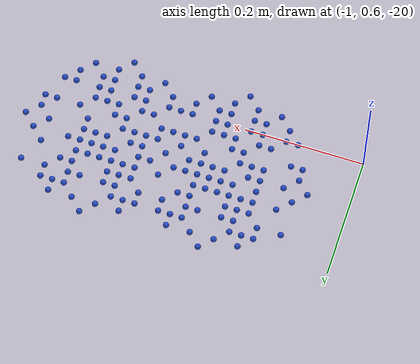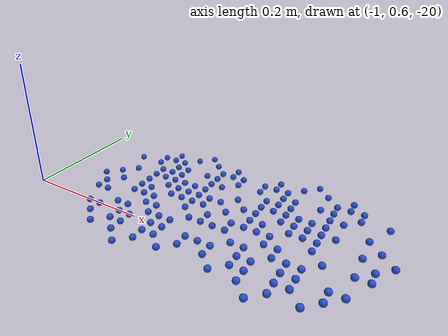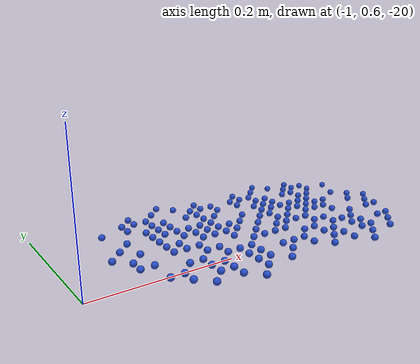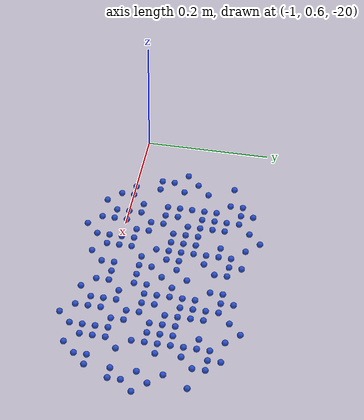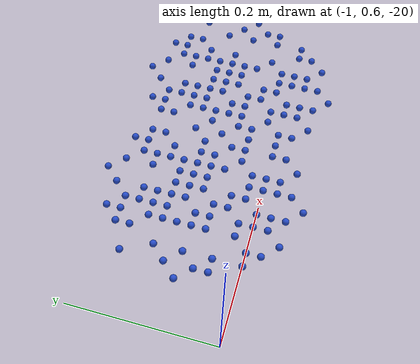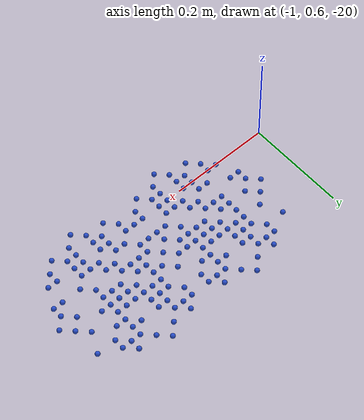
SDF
<sdf version="1.7">
 <model name="Washbasin_Water">
  <static>true</static>
  <link name="washbasin_water_tr1">
   <pose>-0.59 0.68 -20 0 0 0</pose>
   <visual name="green_mark_centre1_visual">
    <geometry><sphere><radius>0.005</radius></sphere></geometry>
    <material><script><name>Gazebo/BlueGlow</name></script></material>
   </visual>
   <visual name="green_mark_centre2_visual">
    <pose>0.02 0 0 0 0 0</pose>
    <geometry><sphere><radius>0.005</radius></sphere></geometry>
    <material><script><name>Gazebo/BlueGlow</name></script></material>
   </visual>
   <visual name="green_mark_centre4_visual">
    <pose>0.04 0 0 0 0 0</pose>
    <geometry><sphere><radius>0.005</radius></sphere></geometry>
    <material><script><name>Gazebo/BlueGlow</name></script></material>
   </visual>
   <visual name="green_mark_centre5_visual">
    <pose>-0.04 0 0 0 0 0</pose>
    <geometry><sphere><radius>0.005</radius></sphere></geometry>
    <material><script><name>Gazebo/BlueGlow</name></script></material>
   </visual>
   <visual name="green_mark_centre7_visual">
    <pose>-0.06 0 0 0 0 0</pose>
    <geometry><sphere><radius>0.005</radius></sphere></geometry>
    <material><script><name>Gazebo/BlueGlow</name></script></material>
   </visual>
   <visual name="green_mark_centre8_visual">
    <pose>0 0.02 0 0 0 0</pose>
    <geometry><sphere><radius>0.005</radius></sphere></geometry>
    <material><script><name>Gazebo/BlueGlow</name></script></material>
   </visual>
   <visual name="green_mark_centre10_visual">
    <pose>0 0.04 0 0 0 0</pose>
    <geometry><sphere><radius>0.005</radius></sphere></geometry>
    <material><script><name>Gazebo/BlueGlow</name></script></material>
   </visual>
   <visual name="green_mark_centre11_visual">
    <pose>0 -0.04 0 0 0 0</pose>
    <geometry><sphere><radius>0.005</radius></sphere></geometry>
    <material><script><name>Gazebo/BlueGlow</name></script></material>
   </visual>
   <visual name="green_mark_centre13_visual">
    <pose>0 -0.06 0 0 0 0</pose>
    <geometry><sphere><radius>0.005</radius></sphere></geometry>
    <material><script><name>Gazebo/BlueGlow</name></script></material>
   </visual>
   <visual name="green_mark_centre14_visual">
    <pose>0.02 0.02 0 0 0 0</pose>
    <geometry><sphere><radius>0.005</radius></sphere></geometry>
    <material><script><name>Gazebo/BlueGlow</name></script></material>
   </visual>
   <visual name="green_mark_centre16_visual">
    <pose>-0.02 -0.02 0 0 0 0</pose>
    <geometry><sphere><radius>0.005</radius></sphere></geometry>
    <material><script><name>Gazebo/BlueGlow</name></script></material>
   </visual>
   <visual name="green_mark_centre17_visual">
    <pose>-0.02 0.02 0 0 0 0</pose>
    <geometry><sphere><radius>0.005</radius></sphere></geometry>
    <material><script><name>Gazebo/BlueGlow</name></script></material>
   </visual>
   <visual name="green_mark_centre19_visual">
    <pose>0.04 0.04 0 0 0 0</pose>
    <geometry><sphere><radius>0.005</radius></sphere></geometry>
    <material><script><name>Gazebo/BlueGlow</name></script></material>
   </visual>
   <visual name="green_mark_centre20_visual">
    <pose>-0.04 0.04 0 0 0 0</pose>
    <geometry><sphere><radius>0.005</radius></sphere></geometry>
    <material><script><name>Gazebo/BlueGlow</name></script></material>
   </visual>
   <visual name="green_mark_centre22_visual">
    <pose>0.04 0.06 0 0 0 0</pose>
    <geometry><sphere><radius>0.005</radius></sphere></geometry>
    <material><script><name>Gazebo/BlueGlow</name></script></material>
   </visual>
   <visual name="green_mark_centre23_visual">
    <pose>0.04 -0.06 0 0 0 0</pose>
    <geometry><sphere><radius>0.005</radius></sphere></geometry>
    <material><script><name>Gazebo/BlueGlow</name></script></material>
   </visual>
   <visual name="green_mark_centre25_visual">
    <pose>-0.04 0.06 0 0 0 0</pose>
    <geometry><sphere><radius>0.005</radius></sphere></geometry>
    <material><script><name>Gazebo/BlueGlow</name></script></material>
   </visual>
   <visual name="green_mark_centre26_visual">
    <pose>-0.04 -0.06 0 0 0 0</pose>
    <geometry><sphere><radius>0.005</radius></sphere></geometry>
    <material><script><name>Gazebo/BlueGlow</name></script></material>
   </visual>
   <visual name="green_mark_centre28_visual">
    <pose>0.06 0.06 0 0 0 0</pose>
    <geometry><sphere><radius>0.005</radius></sphere></geometry>
    <material><script><name>Gazebo/BlueGlow</name></script></material>
   </visual>
   <visual name="green_mark_centre29_visual">
    <pose>-0.06 0.06 0 0 0 0</pose>
    <geometry><sphere><radius>0.005</radius></sphere></geometry>
    <material><script><name>Gazebo/BlueGlow</name></script></material>
   </visual>
   <visual name="green_mark_centre31_visual">
    <pose>-0.06 -0.06 0 0 0 0</pose>
    <geometry><sphere><radius>0.005</radius></sphere></geometry>
    <material><script><name>Gazebo/BlueGlow</name></script></material>
   </visual>
   <visual name="green_mark_centre32_visual">
    <pose>0.02 0.04 0 0 0 0</pose>
    <geometry><sphere><radius>0.005</radius></sphere></geometry>
    <material><script><name>Gazebo/BlueGlow</name></script></material>
   </visual>
   <visual name="green_mark_centre34_visual">
    <pose>-0.02 0.04 0 0 0 0</pose>
    <geometry><sphere><radius>0.005</radius></sphere></geometry>
    <material><script><name>Gazebo/BlueGlow</name></script></material>
   </visual>
   <visual name="green_mark_centre35_visual">
    <pose>-0.02 -0.04 0 0 0 0</pose>
    <geometry><sphere><radius>0.005</radius></sphere></geometry>
    <material><script><name>Gazebo/BlueGlow</name></script></material>
   </visual>
   <visual name="green_mark_centre37_visual">
    <pose>0.02 -0.06 0 0 0 0</pose>
    <geometry><sphere><radius>0.005</radius></sphere></geometry>
    <material><script><name>Gazebo/BlueGlow</name></script></material>
   </visual>
   <visual name="green_mark_centre38_visual">
    <pose>-0.02 0.06 0 0 0 0</pose>
    <geometry><sphere><radius>0.005</radius></sphere></geometry>
    <material><script><name>Gazebo/BlueGlow</name></script></material>
   </visual>
   <visual name="green_mark_centre40_visual">
    <pose>0.04 0.02 0 0 0 0</pose>
    <geometry><sphere><radius>0.005</radius></sphere></geometry>
    <material><script><name>Gazebo/BlueGlow</name></script></material>
   </visual>
   <visual name="green_mark_centre41_visual">
    <pose>0.04 -0.02 0 0 0 0</pose>
    <geometry><sphere><radius>0.005</radius></sphere></geometry>
    <material><script><name>Gazebo/BlueGlow</name></script></material>
   </visual>
   <visual name="green_mark_centre43_visual">
    <pose>-0.04 -0.02 0 0 0 0</pose>
    <geometry><sphere><radius>0.005</radius></sphere></geometry>
    <material><script><name>Gazebo/BlueGlow</name></script></material>
   </visual>
   <visual name="green_mark_centre44_visual">
    <pose>0.06 0.02 0 0 0 0</pose>
    <geometry><sphere><radius>0.005</radius></sphere></geometry>
    <material><script><name>Gazebo/BlueGlow</name></script></material>
   </visual>
   <visual name="green_mark_centre46_visual">
    <pose>-0.06 0.02 0 0 0 0</pose>
    <geometry><sphere><radius>0.005</radius></sphere></geometry>
    <material><script><name>Gazebo/BlueGlow</name></script></material>
   </visual>
   <visual name="green_mark_centre47_visual">
    <pose>-0.06 -0.02 0 0 0 0</pose>
    <geometry><sphere><radius>0.005</radius></sphere></geometry>
    <material><script><name>Gazebo/BlueGlow</name></script></material>
   </visual>
   <visual name="green_mark_centre49_visual">
    <pose>0.06 -0.04 0 0 0 0</pose>
    <geometry><sphere><radius>0.005</radius></sphere></geometry>
    <material><script><name>Gazebo/BlueGlow</name></script></material>
   </visual>
   <visual name="green_mark_centre50_visual">
    <pose>-0.06 0.04 0 0 0 0</pose>
    <geometry><sphere><radius>0.005</radius></sphere></geometry>
    <material><script><name>Gazebo/BlueGlow</name></script></material>
   </visual>
   <visual name="green_mark_top1_visual">
    <pose>-0.06 0.12 0 0 0 0</pose>
    <geometry><sphere><radius>0.005</radius></sphere></geometry>
    <material><script><name>Gazebo/BlueGlow</name></script></material>
   </visual>
   <visual name="green_mark_top2_visual">
    <pose>-0.06 0.10 0 0 0 0</pose>
    <geometry><sphere><radius>0.005</radius></sphere></geometry>
    <material><script><name>Gazebo/BlueGlow</name></script></material>
   </visual>
   <visual name="green_mark_top4_visual">
    <pose>-0.04 0.10 0 0 0 0</pose>
    <geometry><sphere><radius>0.005</radius></sphere></geometry>
    <material><script><name>Gazebo/BlueGlow</name></script></material>
   </visual>
   <visual name="green_mark_top7_visual">
    <pose>-0.04 0.08 0 0 0 0</pose>
    <geometry><sphere><radius>0.005</radius></sphere></geometry>
    <material><script><name>Gazebo/BlueGlow</name></script></material>
   </visual>
   <visual name="green_mark_top8_visual">
    <pose>-0.02 0.12 0 0 0 0</pose>
    <geometry><sphere><radius>0.005</radius></sphere></geometry>
    <material><script><name>Gazebo/BlueGlow</name></script></material>
   </visual>
   <visual name="green_mark_top10_visual">
    <pose>-0.02 0.12 0 0 0 0</pose>
    <geometry><sphere><radius>0.005</radius></sphere></geometry>
    <material><script><name>Gazebo/BlueGlow</name></script></material>
   </visual>
   <visual name="green_mark_top12_visual">
    <pose>-0.02 0.08 0 0 0 0</pose>
    <geometry><sphere><radius>0.005</radius></sphere></geometry>
    <material><script><name>Gazebo/BlueGlow</name></script></material>
   </visual>
   <visual name="green_mark_top14_visual">
    <pose>0.06 0.12 0 0 0 0</pose>
    <geometry><sphere><radius>0.005</radius></sphere></geometry>
    <material><script><name>Gazebo/BlueGlow</name></script></material>
   </visual>
   <visual name="green_mark_top15_visual">
    <pose>0.06 0.10 0 0 0 0</pose>
    <geometry><sphere><radius>0.005</radius></sphere></geometry>
    <material><script><name>Gazebo/BlueGlow</name></script></material>
   </visual>
   <visual name="green_mark_top17_visual">
    <pose>0.04 0.10 0 0 0 0</pose>
    <geometry><sphere><radius>0.005</radius></sphere></geometry>
    <material><script><name>Gazebo/BlueGlow</name></script></material>
   </visual>
   <visual name="green_mark_top20_visual">
    <pose>0.04 0.08 0 0 0 0</pose>
    <geometry><sphere><radius>0.005</radius></sphere></geometry>
    <material><script><name>Gazebo/BlueGlow</name></script></material>
   </visual>
   <visual name="green_mark_top21_visual">
    <pose>0.02 0.12 0 0 0 0</pose>
    <geometry><sphere><radius>0.005</radius></sphere></geometry>
    <material><script><name>Gazebo/BlueGlow</name></script></material>
   </visual>
   <visual name="green_mark_top23_visual">
    <pose>0.02 0.12 0 0 0 0</pose>
    <geometry><sphere><radius>0.005</radius></sphere></geometry>
    <material><script><name>Gazebo/BlueGlow</name></script></material>
   </visual>
   <visual name="green_mark_top25_visual">
    <pose>0.02 0.08 0 0 0 0</pose>
    <geometry><sphere><radius>0.005</radius></sphere></geometry>
    <material><script><name>Gazebo/BlueGlow</name></script></material>
   </visual>
   <visual name="green_mark_top88_visual">
    <pose>0.0 0.14 0 0 0 0</pose>
    <geometry><sphere><radius>0.005</radius></sphere></geometry>
    <material><script><name>Gazebo/BlueGlow</name></script></material>
   </visual>
   <visual name="green_mark_top89_visual">
    <pose>0.0 -0.14 0 0 0 0</pose>
    <geometry><sphere><radius>0.005</radius></sphere></geometry>
    <material><script><name>Gazebo/BlueGlow</name></script></material>
   </visual>
   <visual name="green_mark_top3_visual">
    <pose>-0.06 -0.12 0 0 0 0</pose>
    <geometry><sphere><radius>0.005</radius></sphere></geometry>
    <material><script><name>Gazebo/BlueGlow</name></script></material>
   </visual>
   <visual name="green_mark_top5_visual">
    <pose>-0.04 -0.10 0 0 0 0</pose>
    <geometry><sphere><radius>0.005</radius></sphere></geometry>
    <material><script><name>Gazebo/BlueGlow</name></script></material>
   </visual>
   <visual name="green_mark_top6_visual">
    <pose>-0.04 -0.08 0 0 0 0</pose>
    <geometry><sphere><radius>0.005</radius></sphere></geometry>
    <material><script><name>Gazebo/BlueGlow</name></script></material>
   </visual>
   <visual name="green_mark_top9_visual">
    <pose>-0.02 -0.12 0 0 0 0</pose>
    <geometry><sphere><radius>0.005</radius></sphere></geometry>
    <material><script><name>Gazebo/BlueGlow</name></script></material>
   </visual>
   <visual name="green_mark_top11_visual">
    <pose>-0.02 -0.10 0 0 0 0</pose>
    <geometry><sphere><radius>0.005</radius></sphere></geometry>
    <material><script><name>Gazebo/BlueGlow</name></script></material>
   </visual>
   <visual name="green_mark_top13_visual">
    <pose>-0.02 -0.08 0 0 0 0</pose>
    <geometry><sphere><radius>0.005</radius></sphere></geometry>
    <material><script><name>Gazebo/BlueGlow</name></script></material>
   </visual>
   <visual name="green_mark_top6_visual">
    <pose>-0.04 -0.08 0 0 0 0</pose>
    <geometry><sphere><radius>0.005</radius></sphere></geometry>
    <material><script><name>Gazebo/BlueGlow</name></script></material>
   </visual>
   <visual name="green_mark_top16_visual">
    <pose>0.06 -0.12 0 0 0 0</pose>
    <geometry><sphere><radius>0.005</radius></sphere></geometry>
    <material><script><name>Gazebo/BlueGlow</name></script></material>
   </visual>
   <visual name="green_mark_top18_visual">
    <pose>0.04 -0.10 0 0 0 0</pose>
    <geometry><sphere><radius>0.005</radius></sphere></geometry>
    <material><script><name>Gazebo/BlueGlow</name></script></material>
   </visual>
   <visual name="green_mark_top19_visual">
    <pose>0.04 -0.08 0 0 0 0</pose>
    <geometry><sphere><radius>0.005</radius></sphere></geometry>
    <material><script><name>Gazebo/BlueGlow</name></script></material>
   </visual>
   <visual name="green_mark_top22_visual">
    <pose>0.02 -0.12 0 0 0 0</pose>
    <geometry><sphere><radius>0.005</radius></sphere></geometry>
    <material><script><name>Gazebo/BlueGlow</name></script></material>
   </visual>
   <visual name="green_mark_top24_visual">
    <pose>0.02 -0.10 0 0 0 0</pose>
    <geometry><sphere><radius>0.005</radius></sphere></geometry>
    <material><script><name>Gazebo/BlueGlow</name></script></material>
   </visual>
   <visual name="green_mark_top26_visual">
    <pose>0.02 -0.08 0 0 0 0</pose>
    <geometry><sphere><radius>0.005</radius></sphere></geometry>
    <material><script><name>Gazebo/BlueGlow</name></script></material>
   </visual>
   <visual name="green_mark_top3_visual">
    <pose>-0.14 0 0 0 0 0</pose>
    <geometry><sphere><radius>0.005</radius></sphere></geometry>
    <material><script><name>Gazebo/BlueGlow</name></script></material>
   </visual>
   <visual name="green_mark_top365_visual">
    <pose>-0.12 0.08 0 0 0 0</pose>
    <geometry><sphere><radius>0.005</radius></sphere></geometry>
    <material><script><name>Gazebo/BlueGlow</name></script></material>
   </visual>
   <visual name="green_mark_top93_visual">
    <pose>-0.10 0 0 0 0 0</pose>
    <geometry><sphere><radius>0.005</radius></sphere></geometry>
    <material><script><name>Gazebo/BlueGlow</name></script></material>
   </visual>
   <visual name="green_mark_top5_visual">
    <pose>-0.12 0.02 0 0 0 0</pose>
    <geometry><sphere><radius>0.005</radius></sphere></geometry>
    <material><script><name>Gazebo/BlueGlow</name></script></material>
   </visual>
   <visual name="green_mark_top6_visual">
    <pose>-0.10 0.04 0 0 0 0</pose>
    <geometry><sphere><radius>0.005</radius></sphere></geometry>
    <material><script><name>Gazebo/BlueGlow</name></script></material>
   </visual>
   <visual name="green_mark_top20_visual">
    <pose>-0.08 0.10 0 0 0 0</pose>
    <geometry><sphere><radius>0.005</radius></sphere></geometry>
    <material><script><name>Gazebo/BlueGlow</name></script></material>
   </visual>
   <visual name="green_mark_top50_visual">
    <pose>-0.08 0.08 0 0 0 0</pose>
    <geometry><sphere><radius>0.005</radius></sphere></geometry>
    <material><script><name>Gazebo/BlueGlow</name></script></material>
   </visual>
   <visual name="green_mark_top3_visual">
    <pose>-0.12 -0.04 0 0 0 0</pose>
    <geometry><sphere><radius>0.005</radius></sphere></geometry>
    <material><script><name>Gazebo/BlueGlow</name></script></material>
   </visual>
   <visual name="green_mark_top5_visual">
    <pose>-0.12 -0.02 0 0 0 0</pose>
    <geometry><sphere><radius>0.005</radius></sphere></geometry>
    <material><script><name>Gazebo/BlueGlow</name></script></material>
   </visual>
   <visual name="green_mark_top6_visual">
    <pose>-0.10 -0.04 0 0 0 0</pose>
    <geometry><sphere><radius>0.005</radius></sphere></geometry>
    <material><script><name>Gazebo/BlueGlow</name></script></material>
   </visual>
   <visual name="green_mark_top6_visual">
    <pose>-0.10 -0.08 0 0 0 0</pose>
    <geometry><sphere><radius>0.005</radius></sphere></geometry>
    <material><script><name>Gazebo/BlueGlow</name></script></material>
   </visual>
   <visual name="green_mark_top20_visual">
    <pose>-0.08 -0.10 0 0 0 0</pose>
    <geometry><sphere><radius>0.005</radius></sphere></geometry>
    <material><script><name>Gazebo/BlueGlow</name></script></material>
   </visual>
   <visual name="green_mark_top50_visual">
    <pose>-0.08 -0.08 0 0 0 0</pose>
    <geometry><sphere><radius>0.005</radius></sphere></geometry>
    <material><script><name>Gazebo/BlueGlow</name></script></material>
   </visual>
   <visual name="green_mark_top3_visual">
    <pose>0.14 0 0 0 0 0</pose>
    <geometry><sphere><radius>0.005</radius></sphere></geometry>
    <material><script><name>Gazebo/BlueGlow</name></script></material>
   </visual>
   <visual name="green_mark_top365_visual">
    <pose>0.12 0.08 0 0 0 0</pose>
    <geometry><sphere><radius>0.005</radius></sphere></geometry>
    <material><script><name>Gazebo/BlueGlow</name></script></material>
   </visual>
   <visual name="green_mark_top93_visual">
    <pose>0.10 0 0 0 0 0</pose>
    <geometry><sphere><radius>0.005</radius></sphere></geometry>
    <material><script><name>Gazebo/BlueGlow</name></script></material>
   </visual>
   <visual name="green_mark_top5_visual">
    <pose>0.12 0.02 0 0 0 0</pose>
    <geometry><sphere><radius>0.005</radius></sphere></geometry>
    <material><script><name>Gazebo/BlueGlow</name></script></material>
   </visual>
   <visual name="green_mark_top6_visual">
    <pose>0.10 0.04 0 0 0 0</pose>
    <geometry><sphere><radius>0.005</radius></sphere></geometry>
    <material><script><name>Gazebo/BlueGlow</name></script></material>
   </visual>
   <visual name="green_mark_top20_visual">
    <pose>0.08 0.10 0 0 0 0</pose>
    <geometry><sphere><radius>0.005</radius></sphere></geometry>
    <material><script><name>Gazebo/BlueGlow</name></script></material>
   </visual>
   <visual name="green_mark_top50_visual">
    <pose>0.08 0.08 0 0 0 0</pose>
    <geometry><sphere><radius>0.005</radius></sphere></geometry>
    <material><script><name>Gazebo/BlueGlow</name></script></material>
   </visual>
   <visual name="green_mark_top3_visual">
    <pose>0.12 -0.04 0 0 0 0</pose>
    <geometry><sphere><radius>0.005</radius></sphere></geometry>
    <material><script><name>Gazebo/BlueGlow</name></script></material>
   </visual>
   <visual name="green_mark_top5_visual">
    <pose>0.12 -0.02 0 0 0 0</pose>
    <geometry><sphere><radius>0.005</radius></sphere></geometry>
    <material><script><name>Gazebo/BlueGlow</name></script></material>
   </visual>
   <visual name="green_mark_top6_visual">
    <pose>0.10 -0.04 0 0 0 0</pose>
    <geometry><sphere><radius>0.005</radius></sphere></geometry>
    <material><script><name>Gazebo/BlueGlow</name></script></material>
   </visual>
   <visual name="green_mark_top6_visual">
    <pose>0.10 -0.08 0 0 0 0</pose>
    <geometry><sphere><radius>0.005</radius></sphere></geometry>
    <material><script><name>Gazebo/BlueGlow</name></script></material>
   </visual>
   <visual name="green_mark_top20_visual">
    <pose>0.08 -0.10 0 0 0 0</pose>
    <geometry><sphere><radius>0.005</radius></sphere></geometry>
    <material><script><name>Gazebo/BlueGlow</name></script></material>
   </visual>
   <visual name="green_mark_top50_visual">
    <pose>0.08 -0.08 0 0 0 0</pose>
    <geometry><sphere><radius>0.005</radius></sphere></geometry>
    <material><script><name>Gazebo/BlueGlow</name></script></material>
   </visual>
  </link>
  <link name="washbasin_water_tr2">
   <pose>-0.79 0.68 -20 0 0 0</pose>
   <visual name="green_mark_centre1_visual">
    <geometry><sphere><radius>0.005</radius></sphere></geometry>
    <material><script><name>Gazebo/BlueGlow</name></script></material>
   </visual>
   <visual name="green_mark_centre2_visual">
    <pose>0.02 0 0 0 0 0</pose>
    <geometry><sphere><radius>0.005</radius></sphere></geometry>
    <material><script><name>Gazebo/BlueGlow</name></script></material>
   </visual>
   <visual name="green_mark_centre4_visual">
    <pose>0.04 0 0 0 0 0</pose>
    <geometry><sphere><radius>0.005</radius></sphere></geometry>
    <material><script><name>Gazebo/BlueGlow</name></script></material>
   </visual>
   <visual name="green_mark_centre5_visual">
    <pose>-0.04 0 0 0 0 0</pose>
    <geometry><sphere><radius>0.005</radius></sphere></geometry>
    <material><script><name>Gazebo/BlueGlow</name></script></material>
   </visual>
   <visual name="green_mark_centre7_visual">
    <pose>-0.06 0 0 0 0 0</pose>
    <geometry><sphere><radius>0.005</radius></sphere></geometry>
    <material><script><name>Gazebo/BlueGlow</name></script></material>
   </visual>
   <visual name="green_mark_centre8_visual">
    <pose>0 0.02 0 0 0 0</pose>
    <geometry><sphere><radius>0.005</radius></sphere></geometry>
    <material><script><name>Gazebo/BlueGlow</name></script></material>
   </visual>
   <visual name="green_mark_centre10_visual">
    <pose>0 0.04 0 0 0 0</pose>
    <geometry><sphere><radius>0.005</radius></sphere></geometry>
    <material><script><name>Gazebo/BlueGlow</name></script></material>
   </visual>
   <visual name="green_mark_centre11_visual">
    <pose>0 -0.04 0 0 0 0</pose>
    <geometry><sphere><radius>0.005</radius></sphere></geometry>
    <material><script><name>Gazebo/BlueGlow</name></script></material>
   </visual>
   <visual name="green_mark_centre13_visual">
    <pose>0 -0.06 0 0 0 0</pose>
    <geometry><sphere><radius>0.005</radius></sphere></geometry>
    <material><script><name>Gazebo/BlueGlow</name></script></material>
   </visual>
   <visual name="green_mark_centre14_visual">
    <pose>0.02 0.02 0 0 0 0</pose>
    <geometry><sphere><radius>0.005</radius></sphere></geometry>
    <material><script><name>Gazebo/BlueGlow</name></script></material>
   </visual>
   <visual name="green_mark_centre16_visual">
    <pose>-0.02 -0.02 0 0 0 0</pose>
    <geometry><sphere><radius>0.005</radius></sphere></geometry>
    <material><script><name>Gazebo/BlueGlow</name></script></material>
   </visual>
   <visual name="green_mark_centre17_visual">
    <pose>-0.02 0.02 0 0 0 0</pose>
    <geometry><sphere><radius>0.005</radius></sphere></geometry>
    <material><script><name>Gazebo/BlueGlow</name></script></material>
   </visual>
   <visual name="green_mark_centre19_visual">
    <pose>0.04 0.04 0 0 0 0</pose>
    <geometry><sphere><radius>0.005</radius></sphere></geometry>
    <material><script><name>Gazebo/BlueGlow</name></script></material>
   </visual>
   <visual name="green_mark_centre20_visual">
    <pose>-0.04 0.04 0 0 0 0</pose>
    <geometry><sphere><radius>0.005</radius></sphere></geometry>
    <material><script><name>Gazebo/BlueGlow</name></script></material>
   </visual>
   <visual name="green_mark_centre22_visual">
    <pose>0.04 0.06 0 0 0 0</pose>
    <geometry><sphere><radius>0.005</radius></sphere></geometry>
    <material><script><name>Gazebo/BlueGlow</name></script></material>
   </visual>
   <visual name="green_mark_centre23_visual">
    <pose>0.04 -0.06 0 0 0 0</pose>
    <geometry><sphere><radius>0.005</radius></sphere></geometry>
    <material><script><name>Gazebo/BlueGlow</name></script></material>
   </visual>
   <visual name="green_mark_centre25_visual">
    <pose>-0.04 0.06 0 0 0 0</pose>
    <geometry><sphere><radius>0.005</radius></sphere></geometry>
    <material><script><name>Gazebo/BlueGlow</name></script></material>
   </visual>
   <visual name="green_mark_centre26_visual">
    <pose>-0.04 -0.06 0 0 0 0</pose>
    <geometry><sphere><radius>0.005</radius></sphere></geometry>
    <material><script><name>Gazebo/BlueGlow</name></script></material>
   </visual>
   <visual name="green_mark_centre28_visual">
    <pose>0.06 0.06 0 0 0 0</pose>
    <geometry><sphere><radius>0.005</radius></sphere></geometry>
    <material><script><name>Gazebo/BlueGlow</name></script></material>
   </visual>
   <visual name="green_mark_centre29_visual">
    <pose>-0.06 0.06 0 0 0 0</pose>
    <geometry><sphere><radius>0.005</radius></sphere></geometry>
    <material><script><name>Gazebo/BlueGlow</name></script></material>
   </visual>
   <visual name="green_mark_centre31_visual">
    <pose>-0.06 -0.06 0 0 0 0</pose>
    <geometry><sphere><radius>0.005</radius></sphere></geometry>
    <material><script><name>Gazebo/BlueGlow</name></script></material>
   </visual>
   <visual name="green_mark_centre32_visual">
    <pose>0.02 0.04 0 0 0 0</pose>
    <geometry><sphere><radius>0.005</radius></sphere></geometry>
    <material><script><name>Gazebo/BlueGlow</name></script></material>
   </visual>
   <visual name="green_mark_centre34_visual">
    <pose>-0.02 0.04 0 0 0 0</pose>
    <geometry><sphere><radius>0.005</radius></sphere></geometry>
    <material><script><name>Gazebo/BlueGlow</name></script></material>
   </visual>
   <visual name="green_mark_centre35_visual">
    <pose>-0.02 -0.04 0 0 0 0</pose>
    <geometry><sphere><radius>0.005</radius></sphere></geometry>
    <material><script><name>Gazebo/BlueGlow</name></script></material>
   </visual>
   <visual name="green_mark_centre37_visual">
    <pose>0.02 -0.06 0 0 0 0</pose>
    <geometry><sphere><radius>0.005</radius></sphere></geometry>
    <material><script><name>Gazebo/BlueGlow</name></script></material>
   </visual>
   <visual name="green_mark_centre38_visual">
    <pose>-0.02 0.06 0 0 0 0</pose>
    <geometry><sphere><radius>0.005</radius></sphere></geometry>
    <material><script><name>Gazebo/BlueGlow</name></script></material>
   </visual>
   <visual name="green_mark_centre40_visual">
    <pose>0.04 0.02 0 0 0 0</pose>
    <geometry><sphere><radius>0.005</radius></sphere></geometry>
    <material><script><name>Gazebo/BlueGlow</name></script></material>
   </visual>
   <visual name="green_mark_centre41_visual">
    <pose>0.04 -0.02 0 0 0 0</pose>
    <geometry><sphere><radius>0.005</radius></sphere></geometry>
    <material><script><name>Gazebo/BlueGlow</name></script></material>
   </visual>
   <visual name="green_mark_centre43_visual">
    <pose>-0.04 -0.02 0 0 0 0</pose>
    <geometry><sphere><radius>0.005</radius></sphere></geometry>
    <material><script><name>Gazebo/BlueGlow</name></script></material>
   </visual>
   <visual name="green_mark_centre44_visual">
    <pose>0.06 0.02 0 0 0 0</pose>
    <geometry><sphere><radius>0.005</radius></sphere></geometry>
    <material><script><name>Gazebo/BlueGlow</name></script></material>
   </visual>
   <visual name="green_mark_centre46_visual">
    <pose>-0.06 0.02 0 0 0 0</pose>
    <geometry><sphere><radius>0.005</radius></sphere></geometry>
    <material><script><name>Gazebo/BlueGlow</name></script></material>
   </visual>
   <visual name="green_mark_centre47_visual">
    <pose>-0.06 -0.02 0 0 0 0</pose>
    <geometry><sphere><radius>0.005</radius></sphere></geometry>
    <material><script><name>Gazebo/BlueGlow</name></script></material>
   </visual>
   <visual name="green_mark_centre49_visual">
    <pose>0.06 -0.04 0 0 0 0</pose>
    <geometry><sphere><radius>0.005</radius></sphere></geometry>
    <material><script><name>Gazebo/BlueGlow</name></script></material>
   </visual>
   <visual name="green_mark_centre50_visual">
    <pose>-0.06 0.04 0 0 0 0</pose>
    <geometry><sphere><radius>0.005</radius></sphere></geometry>
    <material><script><name>Gazebo/BlueGlow</name></script></material>
   </visual>
   <visual name="green_mark_top1_visual">
    <pose>-0.06 0.12 0 0 0 0</pose>
    <geometry><sphere><radius>0.005</radius></sphere></geometry>
    <material><script><name>Gazebo/BlueGlow</name></script></material>
   </visual>
   <visual name="green_mark_top2_visual">
    <pose>-0.06 0.10 0 0 0 0</pose>
    <geometry><sphere><radius>0.005</radius></sphere></geometry>
    <material><script><name>Gazebo/BlueGlow</name></script></material>
   </visual>
   <visual name="green_mark_top4_visual">
    <pose>-0.04 0.10 0 0 0 0</pose>
    <geometry><sphere><radius>0.005</radius></sphere></geometry>
    <material><script><name>Gazebo/BlueGlow</name></script></material>
   </visual>
   <visual name="green_mark_top7_visual">
    <pose>-0.04 0.08 0 0 0 0</pose>
    <geometry><sphere><radius>0.005</radius></sphere></geometry>
    <material><script><name>Gazebo/BlueGlow</name></script></material>
   </visual>
   <visual name="green_mark_top8_visual">
    <pose>-0.02 0.12 0 0 0 0</pose>
    <geometry><sphere><radius>0.005</radius></sphere></geometry>
    <material><script><name>Gazebo/BlueGlow</name></script></material>
   </visual>
   <visual name="green_mark_top10_visual">
    <pose>-0.02 0.12 0 0 0 0</pose>
    <geometry><sphere><radius>0.005</radius></sphere></geometry>
    <material><script><name>Gazebo/BlueGlow</name></script></material>
   </visual>
   <visual name="green_mark_top12_visual">
    <pose>-0.02 0.08 0 0 0 0</pose>
    <geometry><sphere><radius>0.005</radius></sphere></geometry>
    <material><script><name>Gazebo/BlueGlow</name></script></material>
   </visual>
   <visual name="green_mark_top14_visual">
    <pose>0.06 0.12 0 0 0 0</pose>
    <geometry><sphere><radius>0.005</radius></sphere></geometry>
    <material><script><name>Gazebo/BlueGlow</name></script></material>
   </visual>
   <visual name="green_mark_top15_visual">
    <pose>0.06 0.10 0 0 0 0</pose>
    <geometry><sphere><radius>0.005</radius></sphere></geometry>
    <material><script><name>Gazebo/BlueGlow</name></script></material>
   </visual>
   <visual name="green_mark_top17_visual">
    <pose>0.04 0.10 0 0 0 0</pose>
    <geometry><sphere><radius>0.005</radius></sphere></geometry>
    <material><script><name>Gazebo/BlueGlow</name></script></material>
   </visual>
   <visual name="green_mark_top20_visual">
    <pose>0.04 0.08 0 0 0 0</pose>
    <geometry><sphere><radius>0.005</radius></sphere></geometry>
    <material><script><name>Gazebo/BlueGlow</name></script></material>
   </visual>
   <visual name="green_mark_top21_visual">
    <pose>0.02 0.12 0 0 0 0</pose>
    <geometry><sphere><radius>0.005</radius></sphere></geometry>
    <material><script><name>Gazebo/BlueGlow</name></script></material>
   </visual>
   <visual name="green_mark_top23_visual">
    <pose>0.02 0.12 0 0 0 0</pose>
    <geometry><sphere><radius>0.005</radius></sphere></geometry>
    <material><script><name>Gazebo/BlueGlow</name></script></material>
   </visual>
   <visual name="green_mark_top25_visual">
    <pose>0.02 0.08 0 0 0 0</pose>
    <geometry><sphere><radius>0.005</radius></sphere></geometry>
    <material><script><name>Gazebo/BlueGlow</name></script></material>
   </visual>
   <visual name="green_mark_top88_visual">
    <pose>0.0 0.14 0 0 0 0</pose>
    <geometry><sphere><radius>0.005</radius></sphere></geometry>
    <material><script><name>Gazebo/BlueGlow</name></script></material>
   </visual>
   <visual name="green_mark_top89_visual">
    <pose>0.0 -0.14 0 0 0 0</pose>
    <geometry><sphere><radius>0.005</radius></sphere></geometry>
    <material><script><name>Gazebo/BlueGlow</name></script></material>
   </visual>
   <visual name="green_mark_top3_visual">
    <pose>-0.06 -0.12 0 0 0 0</pose>
    <geometry><sphere><radius>0.005</radius></sphere></geometry>
    <material><script><name>Gazebo/BlueGlow</name></script></material>
   </visual>
   <visual name="green_mark_top5_visual">
    <pose>-0.04 -0.10 0 0 0 0</pose>
    <geometry><sphere><radius>0.005</radius></sphere></geometry>
    <material><script><name>Gazebo/BlueGlow</name></script></material>
   </visual>
   <visual name="green_mark_top6_visual">
    <pose>-0.04 -0.08 0 0 0 0</pose>
    <geometry><sphere><radius>0.005</radius></sphere></geometry>
    <material><script><name>Gazebo/BlueGlow</name></script></material>
   </visual>
   <visual name="green_mark_top9_visual">
    <pose>-0.02 -0.12 0 0 0 0</pose>
    <geometry><sphere><radius>0.005</radius></sphere></geometry>
    <material><script><name>Gazebo/BlueGlow</name></script></material>
   </visual>
   <visual name="green_mark_top11_visual">
    <pose>-0.02 -0.10 0 0 0 0</pose>
    <geometry><sphere><radius>0.005</radius></sphere></geometry>
    <material><script><name>Gazebo/BlueGlow</name></script></material>
   </visual>
   <visual name="green_mark_top13_visual">
    <pose>-0.02 -0.08 0 0 0 0</pose>
    <geometry><sphere><radius>0.005</radius></sphere></geometry>
    <material><script><name>Gazebo/BlueGlow</name></script></material>
   </visual>
   <visual name="green_mark_top6_visual">
    <pose>-0.04 -0.08 0 0 0 0</pose>
    <geometry><sphere><radius>0.005</radius></sphere></geometry>
    <material><script><name>Gazebo/BlueGlow</name></script></material>
   </visual>
   <visual name="green_mark_top16_visual">
    <pose>0.06 -0.12 0 0 0 0</pose>
    <geometry><sphere><radius>0.005</radius></sphere></geometry>
    <material><script><name>Gazebo/BlueGlow</name></script></material>
   </visual>
   <visual name="green_mark_top18_visual">
    <pose>0.04 -0.10 0 0 0 0</pose>
    <geometry><sphere><radius>0.005</radius></sphere></geometry>
    <material><script><name>Gazebo/BlueGlow</name></script></material>
   </visual>
   <visual name="green_mark_top19_visual">
    <pose>0.04 -0.08 0 0 0 0</pose>
    <geometry><sphere><radius>0.005</radius></sphere></geometry>
    <material><script><name>Gazebo/BlueGlow</name></script></material>
   </visual>
   <visual name="green_mark_top22_visual">
    <pose>0.02 -0.12 0 0 0 0</pose>
    <geometry><sphere><radius>0.005</radius></sphere></geometry>
    <material><script><name>Gazebo/BlueGlow</name></script></material>
   </visual>
   <visual name="green_mark_top24_visual">
    <pose>0.02 -0.10 0 0 0 0</pose>
    <geometry><sphere><radius>0.005</radius></sphere></geometry>
    <material><script><name>Gazebo/BlueGlow</name></script></material>
   </visual>
   <visual name="green_mark_top26_visual">
    <pose>0.02 -0.08 0 0 0 0</pose>
    <geometry><sphere><radius>0.005</radius></sphere></geometry>
    <material><script><name>Gazebo/BlueGlow</name></script></material>
   </visual>
   <visual name="green_mark_top3_visual">
    <pose>-0.14 0 0 0 0 0</pose>
    <geometry><sphere><radius>0.005</radius></sphere></geometry>
    <material><script><name>Gazebo/BlueGlow</name></script></material>
   </visual>
   <visual name="green_mark_top365_visual">
    <pose>-0.12 0.08 0 0 0 0</pose>
    <geometry><sphere><radius>0.005</radius></sphere></geometry>
    <material><script><name>Gazebo/BlueGlow</name></script></material>
   </visual>
   <visual name="green_mark_top93_visual">
    <pose>-0.10 0 0 0 0 0</pose>
    <geometry><sphere><radius>0.005</radius></sphere></geometry>
    <material><script><name>Gazebo/BlueGlow</name></script></material>
   </visual>
   <visual name="green_mark_top5_visual">
    <pose>-0.12 0.02 0 0 0 0</pose>
    <geometry><sphere><radius>0.005</radius></sphere></geometry>
    <material><script><name>Gazebo/BlueGlow</name></script></material>
   </visual>
   <visual name="green_mark_top6_visual">
    <pose>-0.10 0.04 0 0 0 0</pose>
    <geometry><sphere><radius>0.005</radius></sphere></geometry>
    <material><script><name>Gazebo/BlueGlow</name></script></material>
   </visual>
   <visual name="green_mark_top20_visual">
    <pose>-0.08 0.10 0 0 0 0</pose>
    <geometry><sphere><radius>0.005</radius></sphere></geometry>
    <material><script><name>Gazebo/BlueGlow</name></script></material>
   </visual>
   <visual name="green_mark_top50_visual">
    <pose>-0.08 0.08 0 0 0 0</pose>
    <geometry><sphere><radius>0.005</radius></sphere></geometry>
    <material><script><name>Gazebo/BlueGlow</name></script></material>
   </visual>
   <visual name="green_mark_top3_visual">
    <pose>-0.12 -0.04 0 0 0 0</pose>
    <geometry><sphere><radius>0.005</radius></sphere></geometry>
    <material><script><name>Gazebo/BlueGlow</name></script></material>
   </visual>
   <visual name="green_mark_top5_visual">
    <pose>-0.12 -0.02 0 0 0 0</pose>
    <geometry><sphere><radius>0.005</radius></sphere></geometry>
    <material><script><name>Gazebo/BlueGlow</name></script></material>
   </visual>
   <visual name="green_mark_top6_visual">
    <pose>-0.10 -0.04 0 0 0 0</pose>
    <geometry><sphere><radius>0.005</radius></sphere></geometry>
    <material><script><name>Gazebo/BlueGlow</name></script></material>
   </visual>
   <visual name="green_mark_top6_visual">
    <pose>-0.10 -0.08 0 0 0 0</pose>
    <geometry><sphere><radius>0.005</radius></sphere></geometry>
    <material><script><name>Gazebo/BlueGlow</name></script></material>
   </visual>
   <visual name="green_mark_top20_visual">
    <pose>-0.08 -0.10 0 0 0 0</pose>
    <geometry><sphere><radius>0.005</radius></sphere></geometry>
    <material><script><name>Gazebo/BlueGlow</name></script></material>
   </visual>
   <visual name="green_mark_top50_visual">
    <pose>-0.08 -0.08 0 0 0 0</pose>
    <geometry><sphere><radius>0.005</radius></sphere></geometry>
    <material><script><name>Gazebo/BlueGlow</name></script></material>
   </visual>
   <visual name="green_mark_top3_visual">
    <pose>0.14 0 0 0 0 0</pose>
    <geometry><sphere><radius>0.005</radius></sphere></geometry>
    <material><script><name>Gazebo/BlueGlow</name></script></material>
   </visual>
   <visual name="green_mark_top365_visual">
    <pose>0.12 0.08 0 0 0 0</pose>
    <geometry><sphere><radius>0.005</radius></sphere></geometry>
    <material><script><name>Gazebo/BlueGlow</name></script></material>
   </visual>
   <visual name="green_mark_top93_visual">
    <pose>0.10 0 0 0 0 0</pose>
    <geometry><sphere><radius>0.005</radius></sphere></geometry>
    <material><script><name>Gazebo/BlueGlow</name></script></material>
   </visual>
   <visual name="green_mark_top5_visual">
    <pose>0.12 0.02 0 0 0 0</pose>
    <geometry><sphere><radius>0.005</radius></sphere></geometry>
    <material><script><name>Gazebo/BlueGlow</name></script></material>
   </visual>
   <visual name="green_mark_top6_visual">
    <pose>0.10 0.04 0 0 0 0</pose>
    <geometry><sphere><radius>0.005</radius></sphere></geometry>
    <material><script><name>Gazebo/BlueGlow</name></script></material>
   </visual>
   <visual name="green_mark_top20_visual">
    <pose>0.08 0.10 0 0 0 0</pose>
    <geometry><sphere><radius>0.005</radius></sphere></geometry>
    <material><script><name>Gazebo/BlueGlow</name></script></material>
   </visual>
   <visual name="green_mark_top50_visual">
    <pose>0.08 0.08 0 0 0 0</pose>
    <geometry><sphere><radius>0.005</radius></sphere></geometry>
    <material><script><name>Gazebo/BlueGlow</name></script></material>
   </visual>
   <visual name="green_mark_top3_visual">
    <pose>0.12 -0.04 0 0 0 0</pose>
    <geometry><sphere><radius>0.005</radius></sphere></geometry>
    <material><script><name>Gazebo/BlueGlow</name></script></material>
   </visual>
   <visual name="green_mark_top5_visual">
    <pose>0.12 -0.02 0 0 0 0</pose>
    <geometry><sphere><radius>0.005</radius></sphere></geometry>
    <material><script><name>Gazebo/BlueGlow</name></script></material>
   </visual>
   <visual name="green_mark_top6_visual">
    <pose>0.10 -0.04 0 0 0 0</pose>
    <geometry><sphere><radius>0.005</radius></sphere></geometry>
    <material><script><name>Gazebo/BlueGlow</name></script></material>
   </visual>
   <visual name="green_mark_top6_visual">
    <pose>0.10 -0.08 0 0 0 0</pose>
    <geometry><sphere><radius>0.005</radius></sphere></geometry>
    <material><script><name>Gazebo/BlueGlow</name></script></material>
   </visual>
   <visual name="green_mark_top20_visual">
    <pose>0.08 -0.10 0 0 0 0</pose>
    <geometry><sphere><radius>0.005</radius></sphere></geometry>
    <material><script><name>Gazebo/BlueGlow</name></script></material>
   </visual>
   <visual name="green_mark_top50_visual">
    <pose>0.08 -0.08 0 0 0 0</pose>
    <geometry><sphere><radius>0.005</radius></sphere></geometry>
    <material><script><name>Gazebo/BlueGlow</name></script></material>
   </visual>
  </link>
 </model>
</sdf>
